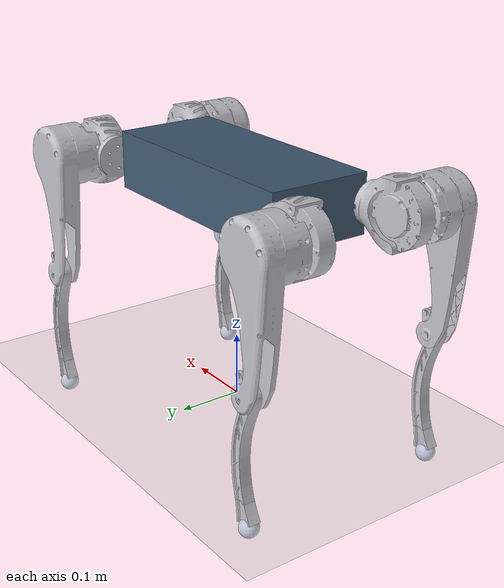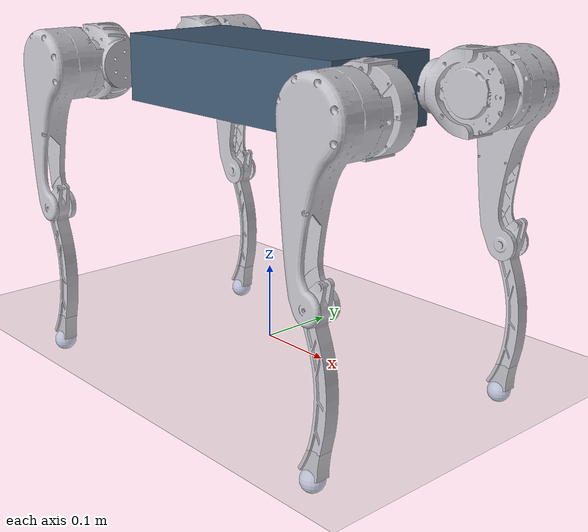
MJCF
<?xml version='1.0' encoding='utf-8'?>
<mujoco model="GO2">
  <compiler angle="radian" meshdir="../custom_robot/meshes" />
  <asset><mesh name="FL_hip_visual_mesh" file="FL_hip.STL" /><mesh name="FL_thigh_visual_mesh" file="FL_thigh.STL" /><mesh name="FL_calf_visual_mesh" file="FL_calf.STL" /><mesh name="FR_hip_visual_mesh" file="FR_hip.STL" /><mesh name="FR_thigh_visual_mesh" file="FR_thigh.STL" /><mesh name="FR_calf_visual_mesh" file="FR_calf.STL" /><mesh name="RL_hip_visual_mesh" file="RL_hip.STL" /><mesh name="RL_thigh_visual_mesh" file="RL_thigh.STL" /><mesh name="RL_calf_visual_mesh" file="RL_calf.STL" /><mesh name="RR_hip_visual_mesh" file="RR_hip.STL" /><mesh name="RR_thigh_visual_mesh" file="RR_thigh.STL" /><mesh name="RR_calf_visual_mesh" file="RR_calf.STL" /></asset><worldbody>
    <geom name="floor" type="plane" pos="0 0 0" size="3 3 0.05" rgba="0.8 0.8 0.8 1" /><body name="floating_base" pos="0 0 0.35"><freejoint name="floating_base_joint" /><inertial pos="0 0 0" mass="4.125600" diaginertia="0.03 0.10 0.11" /><body name="FL_hip" pos="0.1966 0.085001 0.0024868">
      <inertial pos="0.047304 -0.0004014 7.85e-05" quat="0.697792 -0.0033594 -0.00340057 0.716285" mass="0.29039" diaginertia="0.000331578 0.000216825 0.000174996" />
      <joint name="FL_hip_joint" pos="0 0 0" axis="1 0 0" range="-0.35 0.35" actuatorfrcrange="-8 8" />
      <body name="FL_thigh" pos="0.059999 0.020399 0">
        <inertial pos="-0.0028202 0.042698 -0.0252155" quat="0.708784 -0.0250879 -0.0296565 0.704355" mass="0.5538" diaginertia="0.00157436 0.00130961 0.000288333" />
        <joint name="FL_thigh_joint" pos="0 0 0" axis="0 1 0" range="-0.2 1.4" actuatorfrcrange="-8 8" />
        <body name="FL_calf" pos="0 0.0591 -0.19399">
          <inertial pos="0.00859349 3.09319e-06 -0.088081" quat="0.706896 0.0169337 0.0169382 0.706912" mass="0.0922504" diaginertia="0.000474241 0.000468626 9.91523e-06" />
          <joint name="FL_calf_joint" pos="0 0 0" axis="0 1 0" range="-2.8 -1.2" actuatorfrcrange="-8 8" />
          <geom size="0.014796" pos="-1.26e-05 0 -0.19819" rgba="0.796078 0.823529 0.937255 1" />
        <geom name="FL_calf_visual" type="mesh" mesh="FL_calf_visual_mesh" contype="0" conaffinity="0" rgba="0.75 0.75 0.78 1" group="2" /></body>
      <geom name="FL_thigh_visual" type="mesh" mesh="FL_thigh_visual_mesh" contype="0" conaffinity="0" rgba="0.75 0.75 0.78 1" group="2" /></body>
    <geom name="FL_hip_visual" type="mesh" mesh="FL_hip_visual_mesh" contype="0" conaffinity="0" rgba="0.75 0.75 0.78 1" group="2" /></body>
    <body name="FR_hip" pos="0.1966 -0.0849992 0.0024868">
      <inertial pos="0.0473043 0.0003998 -5.21e-05" quat="0.716285 0.00340057 0.0033594 0.697792" mass="0.290394" diaginertia="0.000331578 0.000216825 0.000174996" />
      <joint name="FR_hip_joint" pos="0 0 0" axis="1 0 0" range="-0.35 0.35" actuatorfrcrange="-8 8" />
      <body name="FR_thigh" pos="0.0599992 -0.0204008 2.65e-05">
        <inertial pos="-0.0032999 -0.042913 -0.026306" quat="0.704329 -0.0300809 -0.0255121 0.708777" mass="0.56127" diaginertia="0.00159266 0.00132639 0.000289948" />
        <joint name="FR_thigh_joint" pos="0 0 0" axis="0 1 0" range="-0.2 1.4" actuatorfrcrange="-8 8" />
        <body name="FR_calf" pos="0 -0.0591 -0.194013">
          <inertial pos="0.00859349 -4.54881e-06 -0.0880809" quat="0.706915 0.0169392 0.0169327 0.706892" mass="0.0922499" diaginertia="0.000474241 0.000468626 9.91523e-06" />
          <joint name="FR_calf_joint" pos="0 0 0" axis="0 1 0" range="-2.8 -1.2" actuatorfrcrange="-8 8" />
          <geom size="0.014796" pos="-1.26e-05 0 -0.19819" rgba="0.796078 0.823529 0.937255 1" />
        <geom name="FR_calf_visual" type="mesh" mesh="FR_calf_visual_mesh" contype="0" conaffinity="0" rgba="0.75 0.75 0.78 1" group="2" /></body>
      <geom name="FR_thigh_visual" type="mesh" mesh="FR_thigh_visual_mesh" contype="0" conaffinity="0" rgba="0.75 0.75 0.78 1" group="2" /></body>
    <geom name="FR_hip_visual" type="mesh" mesh="FR_hip_visual_mesh" contype="0" conaffinity="0" rgba="0.75 0.75 0.78 1" group="2" /></body>
    <body name="RL_hip" pos="-0.1966 0.0850008 0.0025132">
      <inertial pos="-0.0473043 -0.0004014 -7.85e-05" quat="0.716285 -0.00340057 -0.0033594 0.697792" mass="0.290394" diaginertia="0.000331578 0.000216825 0.000174996" />
      <joint name="RL_hip_joint" pos="0 0 0" axis="1 0 0" range="-0.35 0.35" actuatorfrcrange="-8 8" />
      <body name="RL_thigh" pos="-0.0599992 0.0203992 0">
        <inertial pos="-0.0028225 0.0426963 -0.0252023" quat="0.708784 -0.0250879 -0.0296565 0.704355" mass="0.55367" diaginertia="0.00157436 0.00130961 0.000288333" />
        <joint name="RL_thigh_joint" pos="0 0 0" axis="0 1 0" range="-0.2 1.4" actuatorfrcrange="-8 8" />
        <body name="RL_calf" pos="0 0.05865 -0.194014">
          <inertial pos="0.00859349 3.09319e-06 -0.0880809" quat="0.706896 0.0169337 0.0169382 0.706912" mass="0.0922499" diaginertia="0.000474241 0.000468626 9.91523e-06" />
          <joint name="RL_calf_joint" pos="0 0 0" axis="0 1 0" range="-2.8 -1.2" actuatorfrcrange="-8 8" />
          <geom size="0.014796" pos="-1.26e-05 0 -0.19819" rgba="0.796078 0.823529 0.937255 1" />
        <geom name="RL_calf_visual" type="mesh" mesh="RL_calf_visual_mesh" contype="0" conaffinity="0" rgba="0.75 0.75 0.78 1" group="2" /></body>
      <geom name="RL_thigh_visual" type="mesh" mesh="RL_thigh_visual_mesh" contype="0" conaffinity="0" rgba="0.75 0.75 0.78 1" group="2" /></body>
    <geom name="RL_hip_visual" type="mesh" mesh="RL_hip_visual_mesh" contype="0" conaffinity="0" rgba="0.75 0.75 0.78 1" group="2" /></body>
    <body name="RR_hip" pos="-0.1966 -0.0849992 0.0025132">
      <inertial pos="-0.0473043 0.0003998 5.21e-05" quat="0.697792 0.0033594 0.00340057 0.716285" mass="0.290394" diaginertia="0.000331578 0.000216825 0.000174996" />
      <joint name="RR_hip_joint" pos="0 0 0" axis="1 0 0" range="-0.35 0.35" actuatorfrcrange="-8 8" />
      <body name="RR_thigh" pos="-0.059999 -0.020401 -2.65e-05">
        <inertial pos="-0.0028794 -0.0426709 -0.025146" quat="0.704278 -0.0309635 -0.0263827 0.708758" mass="0.553031" diaginertia="0.00157396 0.00130808 0.000289457" />
        <joint name="RR_thigh_joint" pos="0 0 0" axis="0 1 0" range="-0.2 1.4" actuatorfrcrange="-8 8" />
        <body name="RR_calf" pos="0 -0.0591 -0.193987">
          <inertial pos="0.00859349 -4.54881e-06 -0.0880809" quat="0.706915 0.0169392 0.0169327 0.706892" mass="0.0922499" diaginertia="0.000474241 0.000468626 9.91523e-06" />
          <joint name="RR_calf_joint" pos="0 0 0" axis="0 1 0" range="-2.8 -1.2" actuatorfrcrange="-8 8" />
          <geom size="0.014796" pos="-1.26e-05 0 -0.19819" rgba="0.796078 0.823529 0.937255 1" />
        <geom name="RR_calf_visual" type="mesh" mesh="RR_calf_visual_mesh" contype="0" conaffinity="0" rgba="0.75 0.75 0.78 1" group="2" /></body>
      <geom name="RR_thigh_visual" type="mesh" mesh="RR_thigh_visual_mesh" contype="0" conaffinity="0" rgba="0.75 0.75 0.78 1" group="2" /></body>
    <geom name="RR_hip_visual" type="mesh" mesh="RR_hip_visual_mesh" contype="0" conaffinity="0" rgba="0.75 0.75 0.78 1" group="2" /></body>
  <geom name="floating_base_box_visual" type="box" size="0.19 0.08 0.045" pos="0 0 0" rgba="0.25 0.35 0.45 1" contype="0" conaffinity="0" group="2" /></body></worldbody>
<option timestep="0.002" gravity="0 0 -9.81" /><actuator><motor name="FL_hip_motor" joint="FL_hip_joint" gear="1" ctrllimited="true" ctrlrange="-8 8" /><motor name="FL_thigh_motor" joint="FL_thigh_joint" gear="1" ctrllimited="true" ctrlrange="-8 8" /><motor name="FL_calf_motor" joint="FL_calf_joint" gear="1" ctrllimited="true" ctrlrange="-8 8" /><motor name="FR_hip_motor" joint="FR_hip_joint" gear="1" ctrllimited="true" ctrlrange="-8 8" /><motor name="FR_thigh_motor" joint="FR_thigh_joint" gear="1" ctrllimited="true" ctrlrange="-8 8" /><motor name="FR_calf_motor" joint="FR_calf_joint" gear="1" ctrllimited="true" ctrlrange="-8 8" /><motor name="RL_hip_motor" joint="RL_hip_joint" gear="1" ctrllimited="true" ctrlrange="-8 8" /><motor name="RL_thigh_motor" joint="RL_thigh_joint" gear="1" ctrllimited="true" ctrlrange="-8 8" /><motor name="RL_calf_motor" joint="RL_calf_joint" gear="1" ctrllimited="true" ctrlrange="-8 8" /><motor name="RR_hip_motor" joint="RR_hip_joint" gear="1" ctrllimited="true" ctrlrange="-8 8" /><motor name="RR_thigh_motor" joint="RR_thigh_joint" gear="1" ctrllimited="true" ctrlrange="-8 8" /><motor name="RR_calf_motor" joint="RR_calf_joint" gear="1" ctrllimited="true" ctrlrange="-8 8" /></actuator></mujoco>
